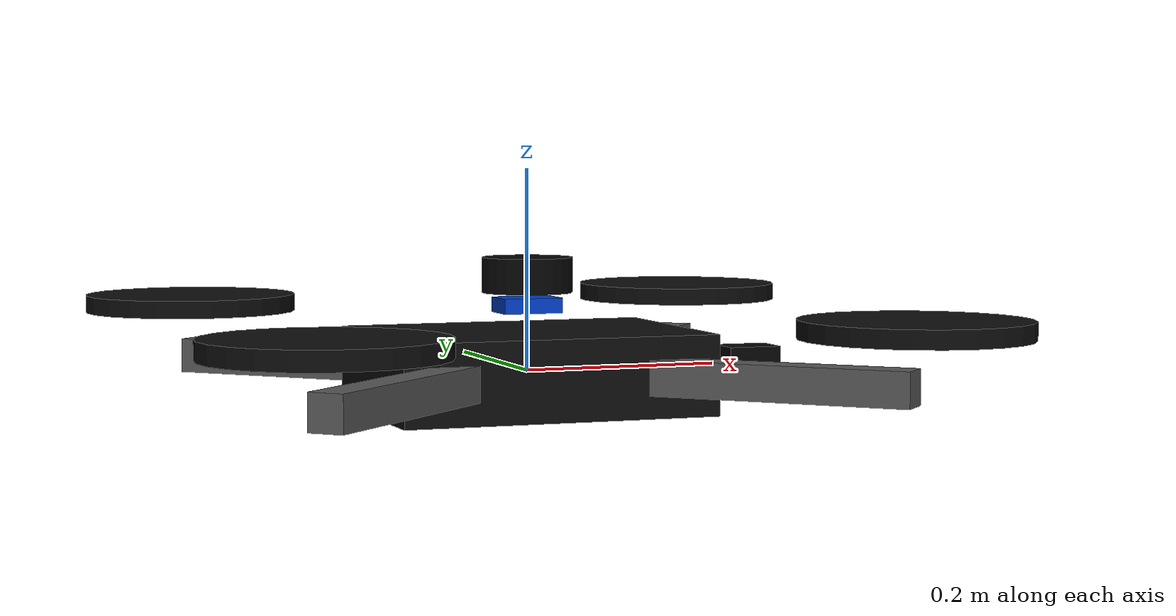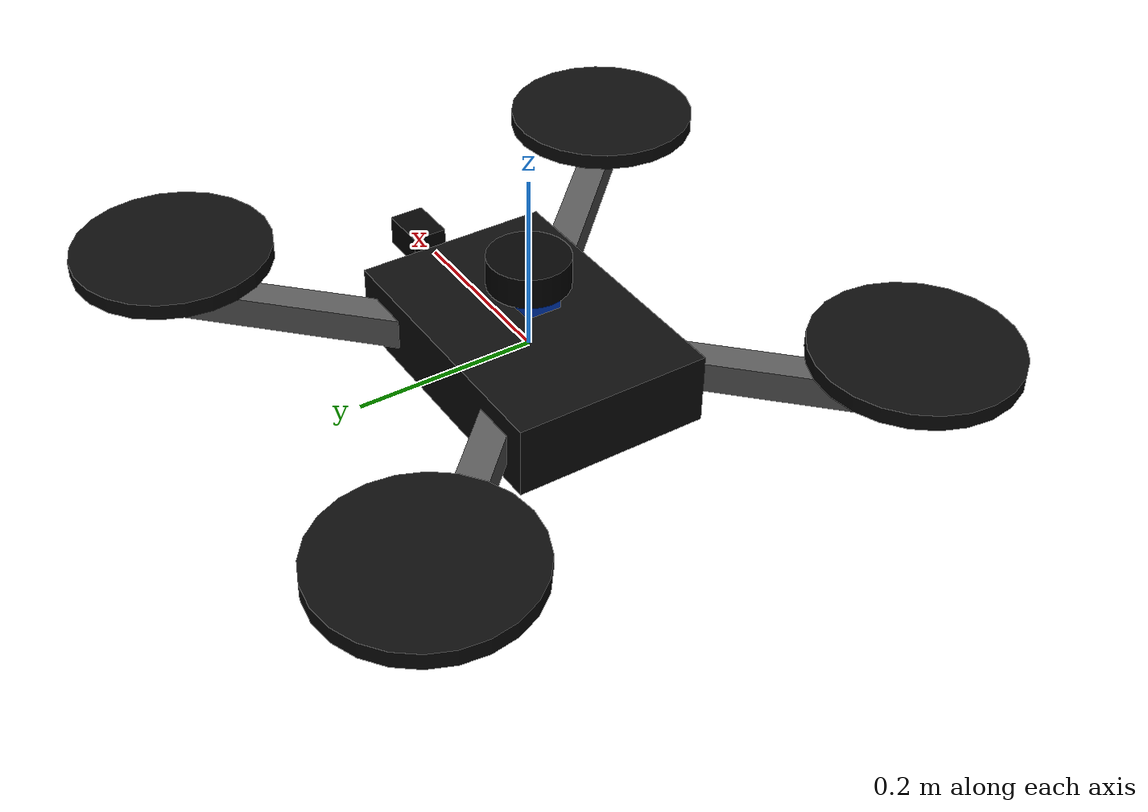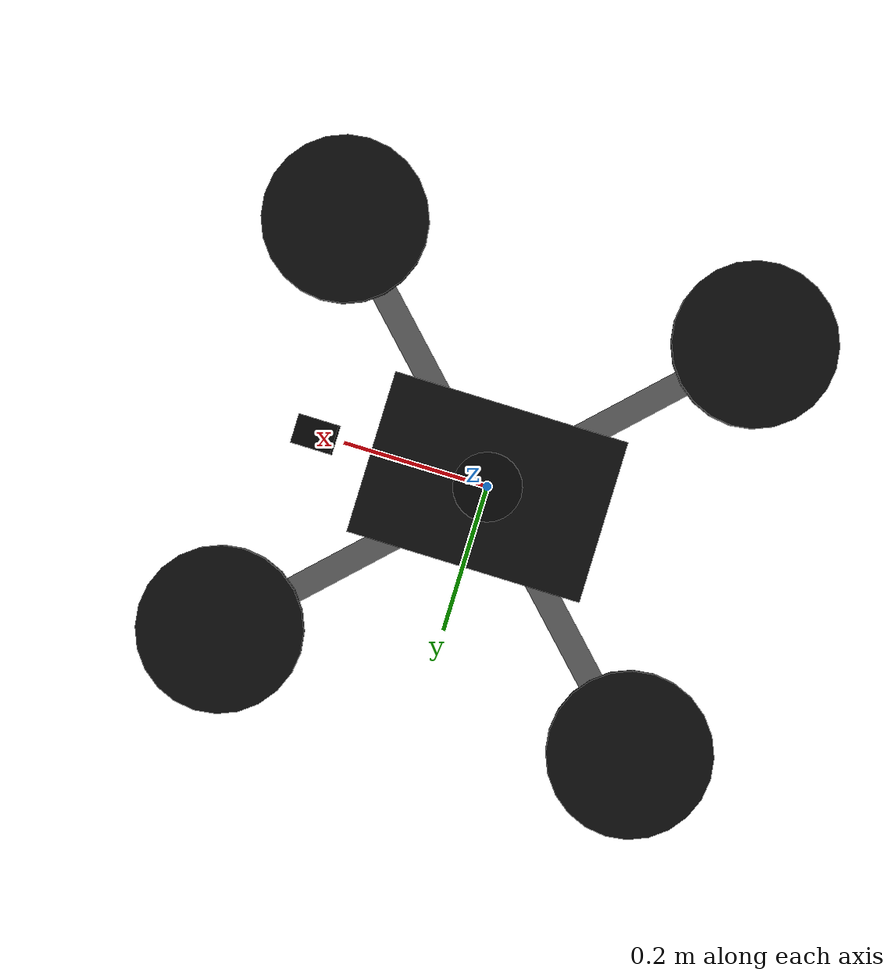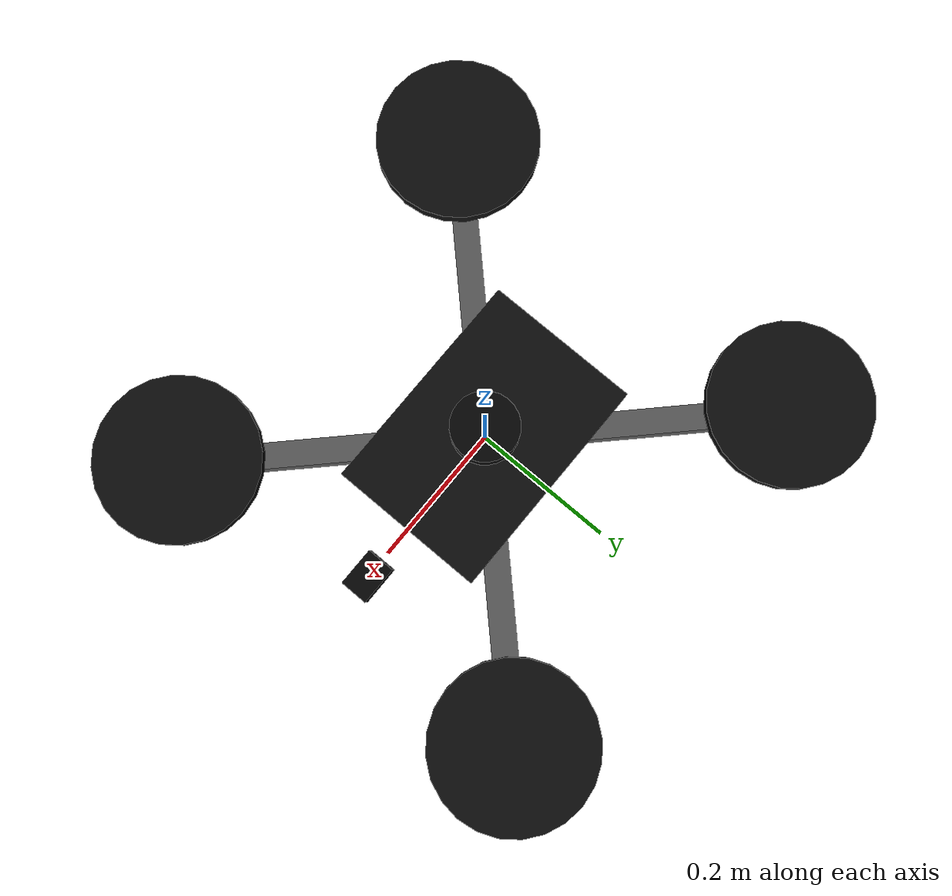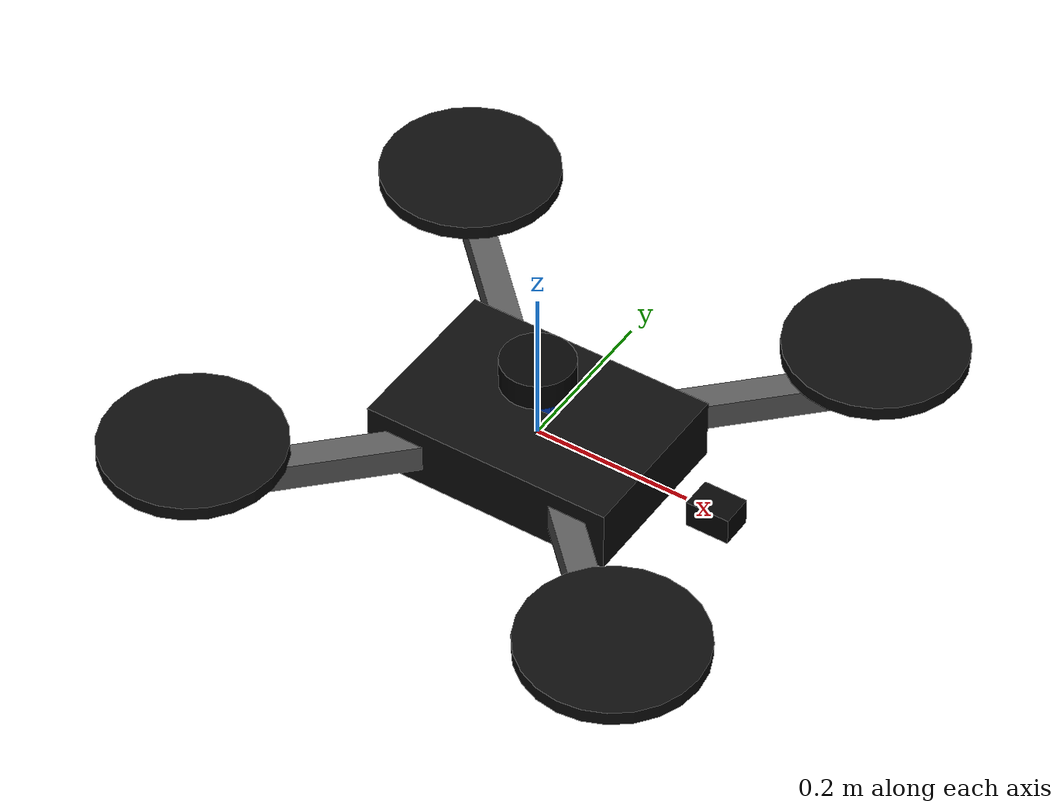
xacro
<?xml version="1.0"?>

<robot xmlns:xacro="http://www.ros.org/wiki/xacro" name="$(arg robot_name)">

    <xacro:arg name="robot_name" default="aeroops" />

    <xacro:include filename="$(find aeroops_description)/urdf/materials.xacro" />
    <xacro:include filename="$(find aeroops_description)/urdf/inertial_macros.xacro" />
    <xacro:include filename="$(find aeroops_description)/urdf/rotors.xacro" />
    <xacro:include filename="$(find aeroops_description)/urdf/sensors.xacro" />

    <link name="base_link">
        <visual>
            <geometry>
                <box size="0.32 0.22 0.08" />
            </geometry>
            <material name="aeroops_dark" />
        </visual>

        <collision>
            <geometry>
                <box size="0.32 0.22 0.08" />
            </geometry>
        </collision>

        <xacro:box_inertial mass="1.2" x="0.32" y="0.22" z="0.08" />
    </link>

    <xacro:rotor name="front_left" x="0.28" y="0.28" direction="ccw" />
    <xacro:rotor name="front_right" x="0.28" y="-0.28" direction="cw" />
    <xacro:rotor name="rear_left" x="-0.28" y="0.28" direction="cw" />
    <xacro:rotor name="rear_right" x="-0.28" y="-0.28" direction="ccw" />

</robot>

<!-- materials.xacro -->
<robot xmlns:xacro="http://www.ros.org/wiki/xacro">

    <material name="aeroops_dark">
        <color rgba="0.05 0.05 0.05 1.0" />
    </material>

    <material name="aeroops_gray">
        <color rgba="0.35 0.35 0.35 1.0" />
    </material>

    <material name="aeroops_blue">
        <color rgba="0.0 0.25 0.8 1.0" />
    </material>

    <material name="aeroops_sensor">
        <color rgba="0.02 0.02 0.02 1.0" />
    </material>

</robot>

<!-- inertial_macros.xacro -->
<robot xmlns:xacro="http://www.ros.org/wiki/xacro">

    <xacro:macro name="box_inertial" params="mass x y z">
        <inertial>
            <origin xyz="0 0 0" rpy="0 0 0" />
            <mass value="${mass}" />
            <inertia
                ixx="${mass * (y*y + z*z) / 12.0}"
                ixy="0.0"
                ixz="0.0"
                iyy="${mass * (x*x + z*z) / 12.0}"
                iyz="0.0"
                izz="${mass * (x*x + y*y) / 12.0}" />
        </inertial>
    </xacro:macro>

    <xacro:macro name="cylinder_inertial" params="mass radius length">
        <inertial>
            <origin xyz="0 0 0" rpy="0 0 0" />
            <mass value="${mass}" />
            <inertia
                ixx="${mass * (3.0 * radius * radius + length * length) / 12.0}"
                ixy="0.0"
                ixz="0.0"
                iyy="${mass * (3.0 * radius * radius + length * length) / 12.0}"
                iyz="0.0"
                izz="${mass * radius * radius / 2.0}" />
        </inertial>
    </xacro:macro>

</robot>

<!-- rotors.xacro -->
<robot xmlns:xacro="http://www.ros.org/wiki/xacro">

    <xacro:macro name="rotor" params="name x y direction">
        <link name="${name}_arm_link">
            <visual>
                <origin xyz="${x / 2.0} ${y / 2.0} 0" rpy="0 0 ${atan2(y, x)}" />
                <geometry>
                    <box size="${sqrt(x*x + y*y)} 0.035 0.035" />
                </geometry>
                <material name="aeroops_gray" />
            </visual>

            <collision>
                <origin xyz="${x / 2.0} ${y / 2.0} 0" rpy="0 0 ${atan2(y, x)}" />
                <geometry>
                    <box size="${sqrt(x*x + y*y)} 0.035 0.035" />
                </geometry>
            </collision>

            <xacro:box_inertial mass="0.08" x="${sqrt(x*x + y*y)}" y="0.035" z="0.035" />
        </link>

        <joint name="${name}_arm_joint" type="fixed">
            <parent link="base_link" />
            <child link="${name}_arm_link" />
            <origin xyz="0 0 0" rpy="0 0 0" />
        </joint>

        <link name="${name}_rotor_link">
            <visual>
                <origin xyz="0 0 0.025" rpy="0 0 0" />
                <geometry>
                    <cylinder radius="0.11" length="0.018" />
                </geometry>
                <material name="aeroops_dark" />
            </visual>

            <collision>
                <origin xyz="0 0 0.025" rpy="0 0 0" />
                <geometry>
                    <cylinder radius="0.11" length="0.018" />
                </geometry>
            </collision>

            <xacro:cylinder_inertial mass="0.04" radius="0.11" length="0.018" />
        </link>

        <joint name="${name}_rotor_joint" type="fixed">
            <parent link="base_link" />
            <child link="${name}_rotor_link" />
            <origin xyz="${x} ${y} 0.03" rpy="0 0 0" />
        </joint>
    </xacro:macro>

</robot>

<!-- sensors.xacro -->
<robot xmlns:xacro="http://www.ros.org/wiki/xacro">

    <link name="imu_link">
        <visual>
            <geometry>
                <box size="0.06 0.04 0.015" />
            </geometry>
            <material name="aeroops_blue" />
        </visual>

        <collision>
            <geometry>
                <box size="0.06 0.04 0.015" />
            </geometry>
        </collision>

        <xacro:box_inertial mass="0.03" x="0.06" y="0.04" z="0.015" />
    </link>

    <joint name="imu_joint" type="fixed">
        <parent link="base_link" />
        <child link="imu_link" />
        <origin xyz="0 0 0.065" rpy="0 0 0" />
    </joint>

    <link name="camera_link">
        <visual>
            <geometry>
                <box size="0.055 0.04 0.035" />
            </geometry>
            <material name="aeroops_sensor" />
        </visual>

        <collision>
            <geometry>
                <box size="0.055 0.04 0.035" />
            </geometry>
        </collision>

        <xacro:box_inertial mass="0.05" x="0.055" y="0.04" z="0.035" />
    </link>

    <joint name="camera_joint" type="fixed">
        <parent link="base_link" />
        <child link="camera_link" />
        <origin xyz="0.24 0 0.0" rpy="0 0 0" />
    </joint>

    <link name="camera_optical_frame" />

    <joint name="camera_optical_joint" type="fixed">
        <parent link="camera_link" />
        <child link="camera_optical_frame" />
        <origin xyz="0 0 0" rpy="-1.57079632679 0 -1.57079632679" />
    </joint>

    <link name="lidar_link">
        <visual>
            <geometry>
                <cylinder radius="0.045" length="0.035" />
            </geometry>
            <material name="aeroops_sensor" />
        </visual>

        <collision>
            <geometry>
                <cylinder radius="0.045" length="0.035" />
            </geometry>
        </collision>

        <xacro:cylinder_inertial mass="0.08" radius="0.045" length="0.035" />
    </link>

    <joint name="lidar_joint" type="fixed">
        <parent link="base_link" />
        <child link="lidar_link" />
        <origin xyz="0 0 0.095" rpy="0 0 0" />
    </joint>

</robot>
